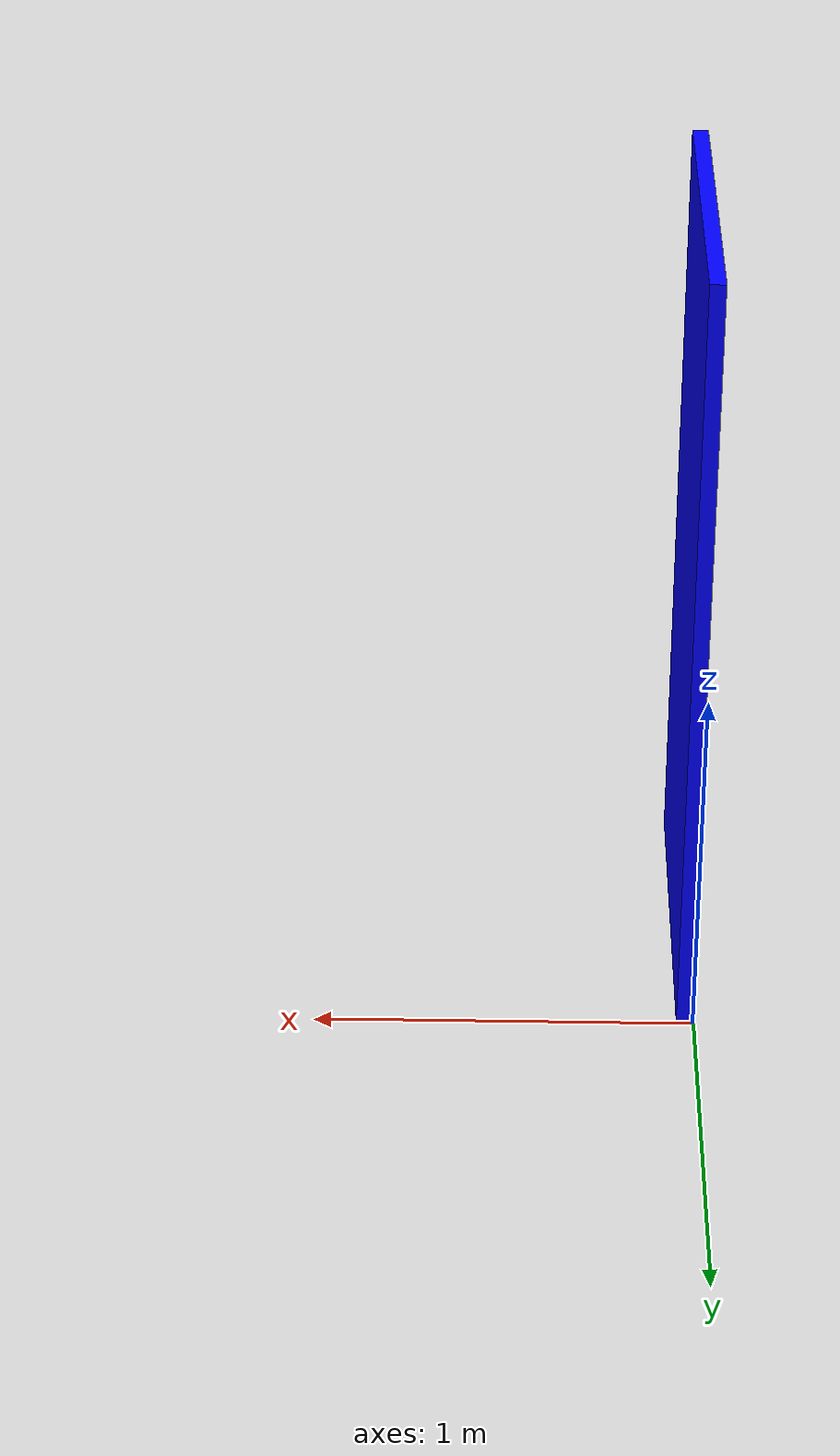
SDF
<?xml version="1.0"?>
<sdf version="1.6">
  <model name="robotics_testlabs/blue_door_right">
    <link name="1_link">
      <collision name="1_col">
        <geometry>
          <box>
            <size>0.04 0.926 2.12</size>
          </box>
        </geometry>
      </collision>
      <visual name="1_vis">
        <geometry>
          <box>
            <size>0.04 0.926 2.12</size>
          </box>
        </geometry>
        <material>
          <ambient>0 0 1 1</ambient>
        </material>
      </visual>
      <pose>0.025 -0.473 1.06 0 0 0</pose>
    </link>
    <static>true</static>
  </model>
</sdf>
